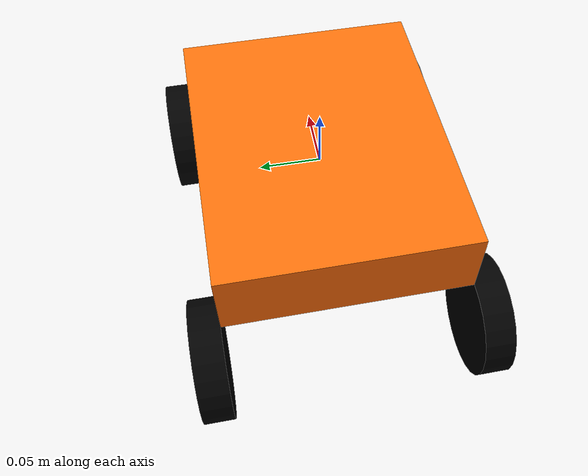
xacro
<?xml version="1.0"?>
<!-- MIGRATION STATUS: COMPLETE (Sprint 3)                                    -->
<!-- mecanum_robot.urdf.xacro — top-level robot description.                  -->
<!-- Assembles: chassis description + materials + ros2_control hardware block. -->
<!-- Ported from diffbot.urdf.xacro: 2-wheel diff → 4-wheel mecanum.          -->
<robot xmlns:xacro="http://www.ros.org/wiki/xacro" name="mecanum_robot">

  <xacro:arg name="prefix"           default=""/>
  <xacro:arg name="use_mock_hardware" default="false"/>

  <!-- Robot description (chassis + 4 wheel joints) -->
  <xacro:include filename="$(find mecanum_pico)/urdf/mecanum_robot_description.urdf.xacro"/>

  <!-- RViz materials -->
  <xacro:include filename="$(find mecanum_pico)/urdf/mecanum_robot.materials.xacro"/>

  <!-- ros2_control hardware block (real Pico or mock) -->
  <xacro:include filename="$(find mecanum_pico)/ros2_control/mecanum_pico.ros2_control.xacro"/>

  <!-- Instantiate the robot macro -->
  <xacro:mecanum_robot prefix="$(arg prefix)"/>

  <!-- Instantiate the ros2_control hardware interface -->
  <xacro:mecanum_pico_ros2_control
    name="MecanumPicoHardware"
    prefix="$(arg prefix)"
    use_mock_hardware="$(arg use_mock_hardware)"/>

</robot>

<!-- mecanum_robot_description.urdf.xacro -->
<!-- MIGRATION STATUS: COMPLETE (Sprint 3)                                     -->
<!-- mecanum_robot_description.urdf.xacro — 4-wheel mecanum robot kinematics.  -->
<!-- Ported from diffbot_description.urdf.xacro: 2 wheels + 2 casters          -->
<!--   → 4 mecanum wheels at chassis corners (no casters needed).               -->
<!-- MEASURE YOUR ROBOT: update all xacro:property values below.                -->
<robot xmlns:xacro="http://www.ros.org/wiki/xacro">

  <xacro:macro name="mecanum_robot" params="prefix">

    <!-- Robot dimensions — MEASURE YOUR ROBOT                              -->
    <xacro:property name="PI"           value="3.1415926535897931"/>
    <xacro:property name="base_mass"    value="1.0" />   <!-- kg -->
    <xacro:property name="base_width"   value="0.20" />  <!-- m — track width (left↔right) -->
    <xacro:property name="base_length"  value="0.25" />  <!-- m — wheelbase (front↔rear)   -->
    <xacro:property name="base_height"  value="0.06" />  <!-- m — chassis plate thickness  -->
    <xacro:property name="wheel_mass"   value="0.15" />  <!-- kg per wheel -->
    <xacro:property name="wheel_len"    value="0.025" /> <!-- m — wheel width -->
    <xacro:property name="wheel_radius" value="0.050" /> <!-- m — MEASURE YOUR WHEEL -->
    <!-- z offset: distance from base_link origin down to wheel centre -->
    <xacro:property name="z_offset"     value="${-(base_height/2 + wheel_radius)}" />

    <!-- Base link                                                            -->
    <link name="${prefix}base_link">
      <visual>
        <origin xyz="0 0 0" rpy="0 0 0"/>
        <geometry><box size="${base_length} ${base_width} ${base_height}"/></geometry>
        <material name="orange"/>
      </visual>
      <collision>
        <origin xyz="0 0 0" rpy="0 0 0"/>
        <geometry><box size="${base_length} ${base_width} ${base_height}"/></geometry>
      </collision>
      <inertial>
        <origin xyz="0 0 0" rpy="0 0 0"/>
        <mass value="${base_mass}"/>
        <inertia
          ixx="${base_mass/12.0*(base_width*base_width  + base_height*base_height)}" ixy="0" ixz="0"
          iyy="${base_mass/12.0*(base_length*base_length + base_height*base_height)}" iyz="0"
          izz="${base_mass/12.0*(base_length*base_length + base_width*base_width)}"/>
      </inertial>
    </link>

    <!-- Wheel macro — instantiated 4× below                                 -->
    <xacro:macro name="mecanum_wheel" params="prefix name x_pos y_pos">
      <joint name="${prefix}${name}_joint" type="continuous">
        <parent link="${prefix}base_link"/>
        <child  link="${prefix}${name}"/>
        <origin xyz="${x_pos} ${y_pos} ${z_offset}" rpy="0 0 0"/>
        <axis xyz="0 1 0"/>
        <dynamics damping="0.2"/>
      </joint>

      <link name="${prefix}${name}">
        <visual>
          <origin xyz="0 0 0" rpy="${PI/2} 0 0"/>
          <geometry><cylinder length="${wheel_len}" radius="${wheel_radius}"/></geometry>
          <material name="black"/>
        </visual>
        <collision>
          <origin xyz="0 0 0" rpy="${PI/2} 0 0"/>
          <geometry><cylinder length="${wheel_len}" radius="${wheel_radius}"/></geometry>
        </collision>
        <inertial>
          <origin xyz="0 0 0" rpy="${PI/2} 0 0"/>
          <mass value="${wheel_mass}"/>
          <inertia
            ixx="${wheel_mass/12.0*(3*wheel_radius*wheel_radius + wheel_len*wheel_len)}" ixy="0" ixz="0"
            iyy="${wheel_mass/2.0*wheel_radius*wheel_radius}"                            iyz="0"
            izz="${wheel_mass/12.0*(3*wheel_radius*wheel_radius + wheel_len*wheel_len)}"/>
        </inertial>
      </link>
    </xacro:macro>

    <!-- Instantiate 4 wheels at chassis corners                             -->
    <!-- x_pos: +front / -rear   y_pos: +left / -right                      -->
    <xacro:mecanum_wheel prefix="${prefix}" name="front_left_wheel"
      x_pos=" ${base_length/2}" y_pos=" ${base_width/2 + wheel_len/2}"/>

    <xacro:mecanum_wheel prefix="${prefix}" name="front_right_wheel"
      x_pos=" ${base_length/2}" y_pos="-${base_width/2 + wheel_len/2}"/>

    <xacro:mecanum_wheel prefix="${prefix}" name="rear_left_wheel"
      x_pos="-${base_length/2}" y_pos=" ${base_width/2 + wheel_len/2}"/>

    <xacro:mecanum_wheel prefix="${prefix}" name="rear_right_wheel"
      x_pos="-${base_length/2}" y_pos="-${base_width/2 + wheel_len/2}"/>

  </xacro:macro>

</robot>

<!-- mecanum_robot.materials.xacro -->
<!-- MIGRATION STATUS: COMPLETE — materials identical to diffbot, path updated -->
<robot>
  <material name="black">  <color rgba="0.0 0.0 0.0 1.0"/></material>
  <material name="blue">   <color rgba="0.0 0.0 0.8 1.0"/></material>
  <material name="green">  <color rgba="0.0 0.8 0.0 1.0"/></material>
  <material name="grey">   <color rgba="0.2 0.2 0.2 1.0"/></material>
  <material name="orange"> <color rgba="${255/255} ${108/255} ${10/255} 1.0"/></material>
  <material name="brown">  <color rgba="${222/255} ${207/255} ${195/255} 1.0"/></material>
  <material name="red">    <color rgba="0.8 0.0 0.0 1.0"/></material>
  <material name="white">  <color rgba="1.0 1.0 1.0 1.0"/></material>
</robot>
